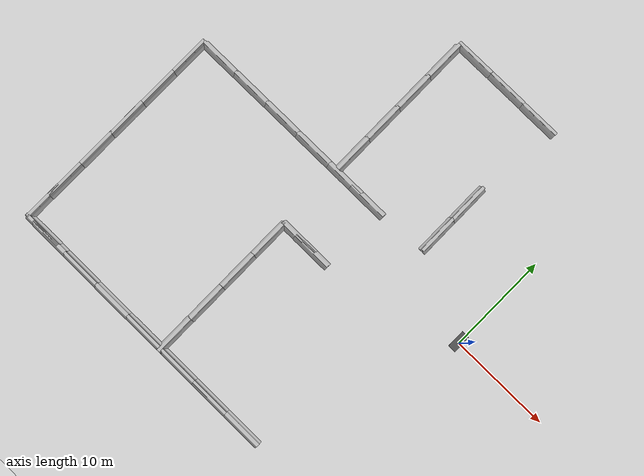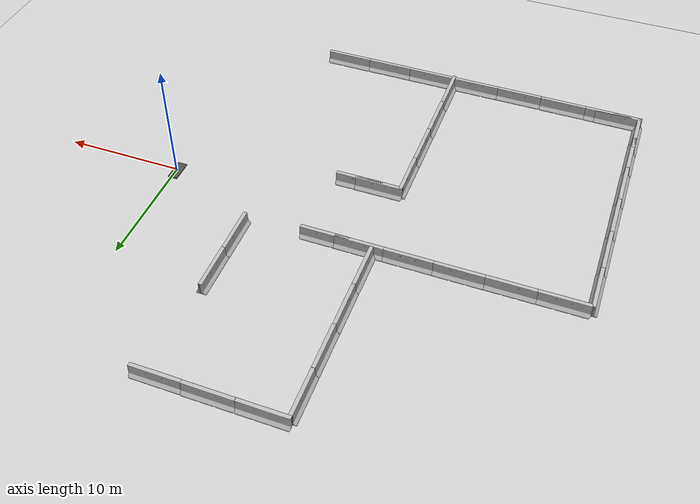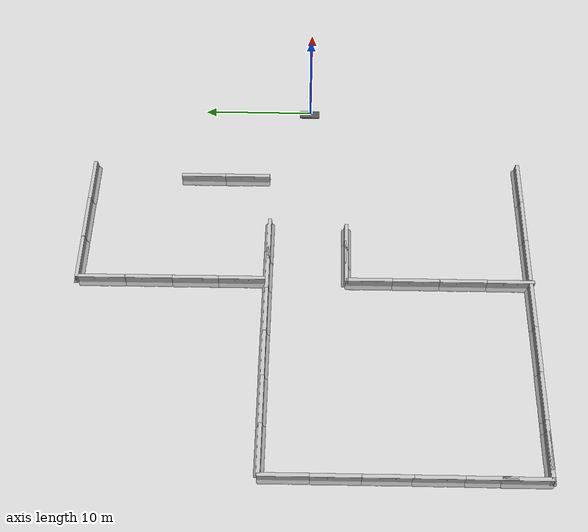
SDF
<sdf version="1.7">
 <world name="default">
  <model name="ground_plane">
   <static>1</static>
   <link name="link">
    <collision name="collision">
     <geometry><plane><normal>0 0 1</normal><size>100 100</size></plane></geometry>
     <surface><friction><ode><mu>100</mu><mu2>50</mu2></ode></friction></surface>
    </collision>
    <visual name="visual">
     <cast_shadows>0</cast_shadows>
     <geometry><plane><normal>0 0 1</normal><size>100 100</size></plane></geometry>
     <material>
      <script><uri>file://media/materials/scripts/gazebo.material</uri><name>Gazebo/Grey</name></script>
     </material>
    </visual>
   </link>
  </model>
  <model name="asphalt_plane">
   <static>1</static>
   <link name="link">
    <collision name="collision"><geometry><box><size>0.799213 1.82438 0.1</size></box></geometry></collision>
    <visual name="visual">
     <cast_shadows>0</cast_shadows>
     <geometry><box><size>0.799213 1.82438 0.1</size></box></geometry>
     <material>
      <script>
       <uri>model://asphalt_plane/materials/scripts</uri>
       <uri>model://asphalt_plane/materials/textures</uri>
       <name>vrc/asphalt</name>
      </script>
     </material>
    </visual>
   </link>
   <pose>-0.129245 0.109771 0 0 -0 0</pose>
  </model>
  <model name="jersey_barrier_clone_clone_0">
   <static>1</static>
   <link name="link">
    <visual name="visual">
     <geometry><mesh><uri>model://jersey_barrier/meshes/jersey_barrier.dae</uri></mesh></geometry>
    </visual>
    <collision name="upright">
     <pose>0 0 0.5715 0 -0 0</pose>
     <geometry><box><size>4.06542 0.3063 1.143</size></box></geometry>
    </collision>
    <collision name="base">
     <pose>0 0 0.032258 0 -0 0</pose>
     <geometry><box><size>4.06542 0.8107 0.064516</size></box></geometry>
    </collision>
    <collision name="base2">
     <pose>0 0 0.1 0 -0 0</pose>
     <geometry><box><size>4.06542 0.65 0.1</size></box></geometry>
    </collision>
    <collision name="base3">
     <pose>0 0 0.2 0 -0 0</pose>
     <geometry><box><size>4.06542 0.5 0.1</size></box></geometry>
    </collision>
    <collision name="left-angle">
     <pose>0 -0.224 0.2401 0.9 -0 0</pose>
     <geometry><box><size>4.06542 0.5 0.064516</size></box></geometry>
    </collision>
    <collision name="right-angle">
     <pose>0 0.224 0.2401 -0.9 0 0</pose>
     <geometry><box><size>4.06542 0.5 0.064516</size></box></geometry>
    </collision>
   </link>
   <pose>-8.50988 -19.0291 0 0 -0 0</pose>
  </model>
  <model name="jersey_barrier_clone_clone_1">
   <static>1</static>
   <link name="link">
    <visual name="visual">
     <geometry><mesh><uri>model://jersey_barrier/meshes/jersey_barrier.dae</uri></mesh></geometry>
    </visual>
    <collision name="upright">
     <pose>0 0 0.5715 0 -0 0</pose>
     <geometry><box><size>4.06542 0.3063 1.143</size></box></geometry>
    </collision>
    <collision name="base">
     <pose>0 0 0.032258 0 -0 0</pose>
     <geometry><box><size>4.06542 0.8107 0.064516</size></box></geometry>
    </collision>
    <collision name="base2">
     <pose>0 0 0.1 0 -0 0</pose>
     <geometry><box><size>4.06542 0.65 0.1</size></box></geometry>
    </collision>
    <collision name="base3">
     <pose>0 0 0.2 0 -0 0</pose>
     <geometry><box><size>4.06542 0.5 0.1</size></box></geometry>
    </collision>
    <collision name="left-angle">
     <pose>0 -0.224 0.2401 0.9 -0 0</pose>
     <geometry><box><size>4.06542 0.5 0.064516</size></box></geometry>
    </collision>
    <collision name="right-angle">
     <pose>0 0.224 0.2401 -0.9 0 0</pose>
     <geometry><box><size>4.06542 0.5 0.064516</size></box></geometry>
    </collision>
   </link>
   <pose>-12.5194 -19.0335 0 0 -0 0</pose>
  </model>
  <model name="jersey_barrier_clone_clone_2">
   <static>1</static>
   <link name="link">
    <visual name="visual">
     <geometry><mesh><uri>model://jersey_barrier/meshes/jersey_barrier.dae</uri></mesh></geometry>
    </visual>
    <collision name="upright">
     <pose>0 0 0.5715 0 -0 0</pose>
     <geometry><box><size>4.06542 0.3063 1.143</size></box></geometry>
    </collision>
    <collision name="base">
     <pose>0 0 0.032258 0 -0 0</pose>
     <geometry><box><size>4.06542 0.8107 0.064516</size></box></geometry>
    </collision>
    <collision name="base2">
     <pose>0 0 0.1 0 -0 0</pose>
     <geometry><box><size>4.06542 0.65 0.1</size></box></geometry>
    </collision>
    <collision name="base3">
     <pose>0 0 0.2 0 -0 0</pose>
     <geometry><box><size>4.06542 0.5 0.1</size></box></geometry>
    </collision>
    <collision name="left-angle">
     <pose>0 -0.224 0.2401 0.9 -0 0</pose>
     <geometry><box><size>4.06542 0.5 0.064516</size></box></geometry>
    </collision>
    <collision name="right-angle">
     <pose>0 0.224 0.2401 -0.9 0 0</pose>
     <geometry><box><size>4.06542 0.5 0.064516</size></box></geometry>
    </collision>
   </link>
   <pose>-16.5198 -19.0306 0 0 -0 0</pose>
  </model>
  <model name="jersey_barrier_clone_0_clone_0_clone_0_clone_0_clone_2_clone_clone_clone_clone_clone_2_clone">
   <static>1</static>
   <link name="link">
    <visual name="visual">
     <geometry><mesh><uri>model://jersey_barrier/meshes/jersey_barrier.dae</uri></mesh></geometry>
    </visual>
    <collision name="upright">
     <pose>0 0 0.5715 0 -0 0</pose>
     <geometry><box><size>4.06542 0.3063 1.143</size></box></geometry>
    </collision>
    <collision name="base">
     <pose>0 0 0.032258 0 -0 0</pose>
     <geometry><box><size>4.06542 0.8107 0.064516</size></box></geometry>
    </collision>
    <collision name="base2">
     <pose>0 0 0.1 0 -0 0</pose>
     <geometry><box><size>4.06542 0.65 0.1</size></box></geometry>
    </collision>
    <collision name="base3">
     <pose>0 0 0.2 0 -0 0</pose>
     <geometry><box><size>4.06542 0.5 0.1</size></box></geometry>
    </collision>
    <collision name="left-angle">
     <pose>0 -0.224 0.2401 0.9 -0 0</pose>
     <geometry><box><size>4.06542 0.5 0.064516</size></box></geometry>
    </collision>
    <collision name="right-angle">
     <pose>0 0.224 0.2401 -0.9 0 0</pose>
     <geometry><box><size>4.06542 0.5 0.064516</size></box></geometry>
    </collision>
   </link>
   <pose>-18.6995 -17.3271 0 0 0 -1.56339</pose>
  </model>
  <model name="jersey_barrier_clone_0_clone_0_clone_0_clone_0_clone_2_clone_clone_clone_clone_clone_2_clone_0">
   <static>1</static>
   <link name="link">
    <visual name="visual">
     <geometry><mesh><uri>model://jersey_barrier/meshes/jersey_barrier.dae</uri></mesh></geometry>
    </visual>
    <collision name="upright">
     <pose>0 0 0.5715 0 -0 0</pose>
     <geometry><box><size>4.06542 0.3063 1.143</size></box></geometry>
    </collision>
    <collision name="base">
     <pose>0 0 0.032258 0 -0 0</pose>
     <geometry><box><size>4.06542 0.8107 0.064516</size></box></geometry>
    </collision>
    <collision name="base2">
     <pose>0 0 0.1 0 -0 0</pose>
     <geometry><box><size>4.06542 0.65 0.1</size></box></geometry>
    </collision>
    <collision name="base3">
     <pose>0 0 0.2 0 -0 0</pose>
     <geometry><box><size>4.06542 0.5 0.1</size></box></geometry>
    </collision>
    <collision name="left-angle">
     <pose>0 -0.224 0.2401 0.9 -0 0</pose>
     <geometry><box><size>4.06542 0.5 0.064516</size></box></geometry>
    </collision>
    <collision name="right-angle">
     <pose>0 0.224 0.2401 -0.9 0 0</pose>
     <geometry><box><size>4.06542 0.5 0.064516</size></box></geometry>
    </collision>
   </link>
   <pose>-18.7081 -13.3038 0 0 0 -1.56339</pose>
  </model>
  <model name="jersey_barrier_clone_0_clone_0_clone_0_clone_0_clone_2_clone_clone_clone_clone_clone_2_clone_1">
   <static>1</static>
   <link name="link">
    <visual name="visual">
     <geometry><mesh><uri>model://jersey_barrier/meshes/jersey_barrier.dae</uri></mesh></geometry>
    </visual>
    <collision name="upright">
     <pose>0 0 0.5715 0 -0 0</pose>
     <geometry><box><size>4.06542 0.3063 1.143</size></box></geometry>
    </collision>
    <collision name="base">
     <pose>0 0 0.032258 0 -0 0</pose>
     <geometry><box><size>4.06542 0.8107 0.064516</size></box></geometry>
    </collision>
    <collision name="base2">
     <pose>0 0 0.1 0 -0 0</pose>
     <geometry><box><size>4.06542 0.65 0.1</size></box></geometry>
    </collision>
    <collision name="base3">
     <pose>0 0 0.2 0 -0 0</pose>
     <geometry><box><size>4.06542 0.5 0.1</size></box></geometry>
    </collision>
    <collision name="left-angle">
     <pose>0 -0.224 0.2401 0.9 -0 0</pose>
     <geometry><box><size>4.06542 0.5 0.064516</size></box></geometry>
    </collision>
    <collision name="right-angle">
     <pose>0 0.224 0.2401 -0.9 0 0</pose>
     <geometry><box><size>4.06542 0.5 0.064516</size></box></geometry>
    </collision>
   </link>
   <pose>-18.7238 -9.28369 0 0 0 -1.56339</pose>
  </model>
  <model name="jersey_barrier_clone_0_clone_0_clone_0_clone_0_clone_2_clone_clone_clone_clone_clone_2_clone_2">
   <static>1</static>
   <link name="link">
    <visual name="visual">
     <geometry><mesh><uri>model://jersey_barrier/meshes/jersey_barrier.dae</uri></mesh></geometry>
    </visual>
    <collision name="upright">
     <pose>0 0 0.5715 0 -0 0</pose>
     <geometry><box><size>4.06542 0.3063 1.143</size></box></geometry>
    </collision>
    <collision name="base">
     <pose>0 0 0.032258 0 -0 0</pose>
     <geometry><box><size>4.06542 0.8107 0.064516</size></box></geometry>
    </collision>
    <collision name="base2">
     <pose>0 0 0.1 0 -0 0</pose>
     <geometry><box><size>4.06542 0.65 0.1</size></box></geometry>
    </collision>
    <collision name="base3">
     <pose>0 0 0.2 0 -0 0</pose>
     <geometry><box><size>4.06542 0.5 0.1</size></box></geometry>
    </collision>
    <collision name="left-angle">
     <pose>0 -0.224 0.2401 0.9 -0 0</pose>
     <geometry><box><size>4.06542 0.5 0.064516</size></box></geometry>
    </collision>
    <collision name="right-angle">
     <pose>0 0.224 0.2401 -0.9 0 0</pose>
     <geometry><box><size>4.06542 0.5 0.064516</size></box></geometry>
    </collision>
   </link>
   <pose>-18.7389 -5.27713 0 0 0 -1.56339</pose>
  </model>
  <model name="jersey_barrier_clone_2">
   <static>1</static>
   <link name="link">
    <visual name="visual">
     <geometry><mesh><uri>model://jersey_barrier/meshes/jersey_barrier.dae</uri></mesh></geometry>
    </visual>
    <collision name="upright">
     <pose>0 0 0.5715 0 -0 0</pose>
     <geometry><box><size>4.06542 0.3063 1.143</size></box></geometry>
    </collision>
    <collision name="base">
     <pose>0 0 0.032258 0 -0 0</pose>
     <geometry><box><size>4.06542 0.8107 0.064516</size></box></geometry>
    </collision>
    <collision name="base2">
     <pose>0 0 0.1 0 -0 0</pose>
     <geometry><box><size>4.06542 0.65 0.1</size></box></geometry>
    </collision>
    <collision name="base3">
     <pose>0 0 0.2 0 -0 0</pose>
     <geometry><box><size>4.06542 0.5 0.1</size></box></geometry>
    </collision>
    <collision name="left-angle">
     <pose>0 -0.224 0.2401 0.9 -0 0</pose>
     <geometry><box><size>4.06542 0.5 0.064516</size></box></geometry>
    </collision>
    <collision name="right-angle">
     <pose>0 0.224 0.2401 -0.9 0 0</pose>
     <geometry><box><size>4.06542 0.5 0.064516</size></box></geometry>
    </collision>
   </link>
   <pose>-16.9002 -3.34919 0 0 -0 0</pose>
  </model>
  <model name="jersey_barrier_clone_2_clone">
   <static>1</static>
   <link name="link">
    <visual name="visual">
     <geometry><mesh><uri>model://jersey_barrier/meshes/jersey_barrier.dae</uri></mesh></geometry>
    </visual>
    <collision name="upright">
     <pose>0 0 0.5715 0 -0 0</pose>
     <geometry><box><size>4.06542 0.3063 1.143</size></box></geometry>
    </collision>
    <collision name="base">
     <pose>0 0 0.032258 0 -0 0</pose>
     <geometry><box><size>4.06542 0.8107 0.064516</size></box></geometry>
    </collision>
    <collision name="base2">
     <pose>0 0 0.1 0 -0 0</pose>
     <geometry><box><size>4.06542 0.65 0.1</size></box></geometry>
    </collision>
    <collision name="base3">
     <pose>0 0 0.2 0 -0 0</pose>
     <geometry><box><size>4.06542 0.5 0.1</size></box></geometry>
    </collision>
    <collision name="left-angle">
     <pose>0 -0.224 0.2401 0.9 -0 0</pose>
     <geometry><box><size>4.06542 0.5 0.064516</size></box></geometry>
    </collision>
    <collision name="right-angle">
     <pose>0 0.224 0.2401 -0.9 0 0</pose>
     <geometry><box><size>4.06542 0.5 0.064516</size></box></geometry>
    </collision>
   </link>
   <pose>-15.2296 -3.35993 0 0 -0 0</pose>
  </model>
  <model name="jersey_barrier_clone_0_clone_4_clone_7_clone_3_clone_clone_4_clone">
   <static>1</static>
   <link name="link">
    <visual name="visual">
     <geometry><mesh><uri>model://jersey_barrier/meshes/jersey_barrier.dae</uri></mesh></geometry>
    </visual>
    <collision name="upright">
     <pose>0 0 0.5715 0 -0 0</pose>
     <geometry><box><size>4.06542 0.3063 1.143</size></box></geometry>
    </collision>
    <collision name="base">
     <pose>0 0 0.032258 0 -0 0</pose>
     <geometry><box><size>4.06542 0.8107 0.064516</size></box></geometry>
    </collision>
    <collision name="base2">
     <pose>0 0 0.1 0 -0 0</pose>
     <geometry><box><size>4.06542 0.65 0.1</size></box></geometry>
    </collision>
    <collision name="base3">
     <pose>0 0 0.2 0 -0 0</pose>
     <geometry><box><size>4.06542 0.5 0.1</size></box></geometry>
    </collision>
    <collision name="left-angle">
     <pose>0 -0.224 0.2401 0.9 -0 0</pose>
     <geometry><box><size>4.06542 0.5 0.064516</size></box></geometry>
    </collision>
    <collision name="right-angle">
     <pose>0 0.224 0.2401 -0.9 0 0</pose>
     <geometry><box><size>4.06542 0.5 0.064516</size></box></geometry>
    </collision>
   </link>
   <pose>-14.8124 3.40324 0 0 -0 0</pose>
  </model>
  <model name="jersey_barrier_clone_0_clone_4_clone_7_clone_3_clone_clone_4_clone_0">
   <static>1</static>
   <link name="link">
    <visual name="visual">
     <geometry><mesh><uri>model://jersey_barrier/meshes/jersey_barrier.dae</uri></mesh></geometry>
    </visual>
    <collision name="upright">
     <pose>0 0 0.5715 0 -0 0</pose>
     <geometry><box><size>4.06542 0.3063 1.143</size></box></geometry>
    </collision>
    <collision name="base">
     <pose>0 0 0.032258 0 -0 0</pose>
     <geometry><box><size>4.06542 0.8107 0.064516</size></box></geometry>
    </collision>
    <collision name="base2">
     <pose>0 0 0.1 0 -0 0</pose>
     <geometry><box><size>4.06542 0.65 0.1</size></box></geometry>
    </collision>
    <collision name="base3">
     <pose>0 0 0.2 0 -0 0</pose>
     <geometry><box><size>4.06542 0.5 0.1</size></box></geometry>
    </collision>
    <collision name="left-angle">
     <pose>0 -0.224 0.2401 0.9 -0 0</pose>
     <geometry><box><size>4.06542 0.5 0.064516</size></box></geometry>
    </collision>
    <collision name="right-angle">
     <pose>0 0.224 0.2401 -0.9 0 0</pose>
     <geometry><box><size>4.06542 0.5 0.064516</size></box></geometry>
    </collision>
   </link>
   <pose>-17.6567 3.4152 0 0 -0 0</pose>
  </model>
  <model name="jersey_barrier_clone_0_clone_4_clone_7_clone_3_clone_clone_4_clone_1">
   <static>1</static>
   <link name="link">
    <visual name="visual">
     <geometry><mesh><uri>model://jersey_barrier/meshes/jersey_barrier.dae</uri></mesh></geometry>
    </visual>
    <collision name="upright">
     <pose>0 0 0.5715 0 -0 0</pose>
     <geometry><box><size>4.06542 0.3063 1.143</size></box></geometry>
    </collision>
    <collision name="base">
     <pose>0 0 0.032258 0 -0 0</pose>
     <geometry><box><size>4.06542 0.8107 0.064516</size></box></geometry>
    </collision>
    <collision name="base2">
     <pose>0 0 0.1 0 -0 0</pose>
     <geometry><box><size>4.06542 0.65 0.1</size></box></geometry>
    </collision>
    <collision name="base3">
     <pose>0 0 0.2 0 -0 0</pose>
     <geometry><box><size>4.06542 0.5 0.1</size></box></geometry>
    </collision>
    <collision name="left-angle">
     <pose>0 -0.224 0.2401 0.9 -0 0</pose>
     <geometry><box><size>4.06542 0.5 0.064516</size></box></geometry>
    </collision>
    <collision name="right-angle">
     <pose>0 0.224 0.2401 -0.9 0 0</pose>
     <geometry><box><size>4.06542 0.5 0.064516</size></box></geometry>
    </collision>
   </link>
   <pose>-21.6479 3.41499 0 0 -0 0</pose>
  </model>
  <model name="jersey_barrier_clone_0_clone_4_clone_7_clone_3_clone_clone_4_clone_2">
   <static>1</static>
   <link name="link">
    <visual name="visual">
     <geometry><mesh><uri>model://jersey_barrier/meshes/jersey_barrier.dae</uri></mesh></geometry>
    </visual>
    <collision name="upright">
     <pose>0 0 0.5715 0 -0 0</pose>
     <geometry><box><size>4.06542 0.3063 1.143</size></box></geometry>
    </collision>
    <collision name="base">
     <pose>0 0 0.032258 0 -0 0</pose>
     <geometry><box><size>4.06542 0.8107 0.064516</size></box></geometry>
    </collision>
    <collision name="base2">
     <pose>0 0 0.1 0 -0 0</pose>
     <geometry><box><size>4.06542 0.65 0.1</size></box></geometry>
    </collision>
    <collision name="base3">
     <pose>0 0 0.2 0 -0 0</pose>
     <geometry><box><size>4.06542 0.5 0.1</size></box></geometry>
    </collision>
    <collision name="left-angle">
     <pose>0 -0.224 0.2401 0.9 -0 0</pose>
     <geometry><box><size>4.06542 0.5 0.064516</size></box></geometry>
    </collision>
    <collision name="right-angle">
     <pose>0 0.224 0.2401 -0.9 0 0</pose>
     <geometry><box><size>4.06542 0.5 0.064516</size></box></geometry>
    </collision>
   </link>
   <pose>-25.6493 3.42223 0 0 -0 0</pose>
  </model>
  <model name="jersey_barrier_clone_0_clone_4_clone_7_clone_3_clone_clone_4_clone_3">
   <static>1</static>
   <link name="link">
    <visual name="visual">
     <geometry><mesh><uri>model://jersey_barrier/meshes/jersey_barrier.dae</uri></mesh></geometry>
    </visual>
    <collision name="upright">
     <pose>0 0 0.5715 0 -0 0</pose>
     <geometry><box><size>4.06542 0.3063 1.143</size></box></geometry>
    </collision>
    <collision name="base">
     <pose>0 0 0.032258 0 -0 0</pose>
     <geometry><box><size>4.06542 0.8107 0.064516</size></box></geometry>
    </collision>
    <collision name="base2">
     <pose>0 0 0.1 0 -0 0</pose>
     <geometry><box><size>4.06542 0.65 0.1</size></box></geometry>
    </collision>
    <collision name="base3">
     <pose>0 0 0.2 0 -0 0</pose>
     <geometry><box><size>4.06542 0.5 0.1</size></box></geometry>
    </collision>
    <collision name="left-angle">
     <pose>0 -0.224 0.2401 0.9 -0 0</pose>
     <geometry><box><size>4.06542 0.5 0.064516</size></box></geometry>
    </collision>
    <collision name="right-angle">
     <pose>0 0.224 0.2401 -0.9 0 0</pose>
     <geometry><box><size>4.06542 0.5 0.064516</size></box></geometry>
    </collision>
   </link>
   <pose>-29.6256 3.41003 0 0 -0 0</pose>
  </model>
  <model name="jersey_barrier_clone_0_clone_4_clone_7_clone_3_clone_clone_4_clone_4">
   <static>1</static>
   <link name="link">
    <visual name="visual">
     <geometry><mesh><uri>model://jersey_barrier/meshes/jersey_barrier.dae</uri></mesh></geometry>
    </visual>
    <collision name="upright">
     <pose>0 0 0.5715 0 -0 0</pose>
     <geometry><box><size>4.06542 0.3063 1.143</size></box></geometry>
    </collision>
    <collision name="base">
     <pose>0 0 0.032258 0 -0 0</pose>
     <geometry><box><size>4.06542 0.8107 0.064516</size></box></geometry>
    </collision>
    <collision name="base2">
     <pose>0 0 0.1 0 -0 0</pose>
     <geometry><box><size>4.06542 0.65 0.1</size></box></geometry>
    </collision>
    <collision name="base3">
     <pose>0 0 0.2 0 -0 0</pose>
     <geometry><box><size>4.06542 0.5 0.1</size></box></geometry>
    </collision>
    <collision name="left-angle">
     <pose>0 -0.224 0.2401 0.9 -0 0</pose>
     <geometry><box><size>4.06542 0.5 0.064516</size></box></geometry>
    </collision>
    <collision name="right-angle">
     <pose>0 0.224 0.2401 -0.9 0 0</pose>
     <geometry><box><size>4.06542 0.5 0.064516</size></box></geometry>
    </collision>
   </link>
   <pose>-33.6015 3.40125 0 0 -0 0</pose>
  </model>
  <model name="jersey_barrier_clone_0_clone_0_clone_0_clone_0_clone_2_clone_clone_clone_clone_clone_2_clone_2_clone">
   <static>1</static>
   <link name="link">
    <visual name="visual">
     <geometry><mesh><uri>model://jersey_barrier/meshes/jersey_barrier.dae</uri></mesh></geometry>
    </visual>
    <collision name="upright">
     <pose>0 0 0.5715 0 -0 0</pose>
     <geometry><box><size>4.06542 0.3063 1.143</size></box></geometry>
    </collision>
    <collision name="base">
     <pose>0 0 0.032258 0 -0 0</pose>
     <geometry><box><size>4.06542 0.8107 0.064516</size></box></geometry>
    </collision>
    <collision name="base2">
     <pose>0 0 0.1 0 -0 0</pose>
     <geometry><box><size>4.06542 0.65 0.1</size></box></geometry>
    </collision>
    <collision name="base3">
     <pose>0 0 0.2 0 -0 0</pose>
     <geometry><box><size>4.06542 0.5 0.1</size></box></geometry>
    </collision>
    <collision name="left-angle">
     <pose>0 -0.224 0.2401 0.9 -0 0</pose>
     <geometry><box><size>4.06542 0.5 0.064516</size></box></geometry>
    </collision>
    <collision name="right-angle">
     <pose>0 0.224 0.2401 -0.9 0 0</pose>
     <geometry><box><size>4.06542 0.5 0.064516</size></box></geometry>
    </collision>
   </link>
   <pose>-35.6819 1.49445 0 0 0 -1.56339</pose>
  </model>
  <model name="jersey_barrier_clone_0_clone_0_clone_0_clone_0_clone_2_clone_clone_clone_clone_clone_2_clone_2_clone_0">
   <static>1</static>
   <link name="link">
    <visual name="visual">
     <geometry><mesh><uri>model://jersey_barrier/meshes/jersey_barrier.dae</uri></mesh></geometry>
    </visual>
    <collision name="upright">
     <pose>0 0 0.5715 0 -0 0</pose>
     <geometry><box><size>4.06542 0.3063 1.143</size></box></geometry>
    </collision>
    <collision name="base">
     <pose>0 0 0.032258 0 -0 0</pose>
     <geometry><box><size>4.06542 0.8107 0.064516</size></box></geometry>
    </collision>
    <collision name="base2">
     <pose>0 0 0.1 0 -0 0</pose>
     <geometry><box><size>4.06542 0.65 0.1</size></box></geometry>
    </collision>
    <collision name="base3">
     <pose>0 0 0.2 0 -0 0</pose>
     <geometry><box><size>4.06542 0.5 0.1</size></box></geometry>
    </collision>
    <collision name="left-angle">
     <pose>0 -0.224 0.2401 0.9 -0 0</pose>
     <geometry><box><size>4.06542 0.5 0.064516</size></box></geometry>
    </collision>
    <collision name="right-angle">
     <pose>0 0.224 0.2401 -0.9 0 0</pose>
     <geometry><box><size>4.06542 0.5 0.064516</size></box></geometry>
    </collision>
   </link>
   <pose>-35.6664 -2.5053 0 0 0 -1.56339</pose>
  </model>
  <model name="jersey_barrier_clone_0_clone_0_clone_0_clone_0_clone_2_clone_clone_clone_clone_clone_2_clone_2_clone_1">
   <static>1</static>
   <link name="link">
    <visual name="visual">
     <geometry><mesh><uri>model://jersey_barrier/meshes/jersey_barrier.dae</uri></mesh></geometry>
    </visual>
    <collision name="upright">
     <pose>0 0 0.5715 0 -0 0</pose>
     <geometry><box><size>4.06542 0.3063 1.143</size></box></geometry>
    </collision>
    <collision name="base">
     <pose>0 0 0.032258 0 -0 0</pose>
     <geometry><box><size>4.06542 0.8107 0.064516</size></box></geometry>
    </collision>
    <collision name="base2">
     <pose>0 0 0.1 0 -0 0</pose>
     <geometry><box><size>4.06542 0.65 0.1</size></box></geometry>
    </collision>
    <collision name="base3">
     <pose>0 0 0.2 0 -0 0</pose>
     <geometry><box><size>4.06542 0.5 0.1</size></box></geometry>
    </collision>
    <collision name="left-angle">
     <pose>0 -0.224 0.2401 0.9 -0 0</pose>
     <geometry><box><size>4.06542 0.5 0.064516</size></box></geometry>
    </collision>
    <collision name="right-angle">
     <pose>0 0.224 0.2401 -0.9 0 0</pose>
     <geometry><box><size>4.06542 0.5 0.064516</size></box></geometry>
    </collision>
   </link>
   <pose>-35.6456 -6.48877 0 0 0 -1.56339</pose>
  </model>
  <model name="jersey_barrier_clone_0_clone_0_clone_0_clone_0_clone_2_clone_clone_clone_clone_clone_2_clone_2_clone_2">
   <static>1</static>
   <link name="link">
    <visual name="visual">
     <geometry><mesh><uri>model://jersey_barrier/meshes/jersey_barrier.dae</uri></mesh></geometry>
    </visual>
    <collision name="upright">
     <pose>0 0 0.5715 0 -0 0</pose>
     <geometry><box><size>4.06542 0.3063 1.143</size></box></geometry>
    </collision>
    <collision name="base">
     <pose>0 0 0.032258 0 -0 0</pose>
     <geometry><box><size>4.06542 0.8107 0.064516</size></box></geometry>
    </collision>
    <collision name="base2">
     <pose>0 0 0.1 0 -0 0</pose>
     <geometry><box><size>4.06542 0.65 0.1</size></box></geometry>
    </collision>
    <collision name="base3">
     <pose>0 0 0.2 0 -0 0</pose>
     <geometry><box><size>4.06542 0.5 0.1</size></box></geometry>
    </collision>
    <collision name="left-angle">
     <pose>0 -0.224 0.2401 0.9 -0 0</pose>
     <geometry><box><size>4.06542 0.5 0.064516</size></box></geometry>
    </collision>
    <collision name="right-angle">
     <pose>0 0.224 0.2401 -0.9 0 0</pose>
     <geometry><box><size>4.06542 0.5 0.064516</size></box></geometry>
    </collision>
   </link>
   <pose>-35.6326 -10.3438 0 0 0 -1.56339</pose>
  </model>
  <model name="jersey_barrier_clone_0_clone_0_clone_0_clone_0_clone_2_clone_clone_clone_clone_clone_2_clone_2_clone_3">
   <static>1</static>
   <link name="link">
    <visual name="visual">
     <geometry><mesh><uri>model://jersey_barrier/meshes/jersey_barrier.dae</uri></mesh></geometry>
    </visual>
    <collision name="upright">
     <pose>0 0 0.5715 0 -0 0</pose>
     <geometry><box><size>4.06542 0.3063 1.143</size></box></geometry>
    </collision>
    <collision name="base">
     <pose>0 0 0.032258 0 -0 0</pose>
     <geometry><box><size>4.06542 0.8107 0.064516</size></box></geometry>
    </collision>
    <collision name="base2">
     <pose>0 0 0.1 0 -0 0</pose>
     <geometry><box><size>4.06542 0.65 0.1</size></box></geometry>
    </collision>
    <collision name="base3">
     <pose>0 0 0.2 0 -0 0</pose>
     <geometry><box><size>4.06542 0.5 0.1</size></box></geometry>
    </collision>
    <collision name="left-angle">
     <pose>0 -0.224 0.2401 0.9 -0 0</pose>
     <geometry><box><size>4.06542 0.5 0.064516</size></box></geometry>
    </collision>
    <collision name="right-angle">
     <pose>0 0.224 0.2401 -0.9 0 0</pose>
     <geometry><box><size>4.06542 0.5 0.064516</size></box></geometry>
    </collision>
   </link>
   <pose>-35.6233 -14.362 0 0 0 -1.56339</pose>
  </model>
  <model name="jersey_barrier_clone_clone_2_clone">
   <static>1</static>
   <link name="link">
    <visual name="visual">
     <geometry><mesh><uri>model://jersey_barrier/meshes/jersey_barrier.dae</uri></mesh></geometry>
    </visual>
    <collision name="upright">
     <pose>0 0 0.5715 0 -0 0</pose>
     <geometry><box><size>4.06542 0.3063 1.143</size></box></geometry>
    </collision>
    <collision name="base">
     <pose>0 0 0.032258 0 -0 0</pose>
     <geometry><box><size>4.06542 0.8107 0.064516</size></box></geometry>
    </collision>
    <collision name="base2">
     <pose>0 0 0.1 0 -0 0</pose>
     <geometry><box><size>4.06542 0.65 0.1</size></box></geometry>
    </collision>
    <collision name="base3">
     <pose>0 0 0.2 0 -0 0</pose>
     <geometry><box><size>4.06542 0.5 0.1</size></box></geometry>
    </collision>
    <collision name="left-angle">
     <pose>0 -0.224 0.2401 0.9 -0 0</pose>
     <geometry><box><size>4.06542 0.5 0.064516</size></box></geometry>
    </collision>
    <collision name="right-angle">
     <pose>0 0.224 0.2401 -0.9 0 0</pose>
     <geometry><box><size>4.06542 0.5 0.064516</size></box></geometry>
    </collision>
   </link>
   <pose>-20.8644 -19.0385 0 0 -0 0</pose>
  </model>
  <model name="jersey_barrier_clone_clone_2_clone_0">
   <static>1</static>
   <link name="link">
    <visual name="visual">
     <geometry><mesh><uri>model://jersey_barrier/meshes/jersey_barrier.dae</uri></mesh></geometry>
    </visual>
    <collision name="upright">
     <pose>0 0 0.5715 0 -0 0</pose>
     <geometry><box><size>4.06542 0.3063 1.143</size></box></geometry>
    </collision>
    <collision name="base">
     <pose>0 0 0.032258 0 -0 0</pose>
     <geometry><box><size>4.06542 0.8107 0.064516</size></box></geometry>
    </collision>
    <collision name="base2">
     <pose>0 0 0.1 0 -0 0</pose>
     <geometry><box><size>4.06542 0.65 0.1</size></box></geometry>
    </collision>
    <collision name="base3">
     <pose>0 0 0.2 0 -0 0</pose>
     <geometry><box><size>4.06542 0.5 0.1</size></box></geometry>
    </collision>
    <collision name="left-angle">
     <pose>0 -0.224 0.2401 0.9 -0 0</pose>
     <geometry><box><size>4.06542 0.5 0.064516</size></box></geometry>
    </collision>
    <collision name="right-angle">
     <pose>0 0.224 0.2401 -0.9 0 0</pose>
     <geometry><box><size>4.06542 0.5 0.064516</size></box></geometry>
    </collision>
   </link>
   <pose>-24.8522 -19.0437 0 0 -0 0</pose>
  </model>
  <model name="jersey_barrier_clone_clone_2_clone_1">
   <static>1</static>
   <link name="link">
    <visual name="visual">
     <geometry><mesh><uri>model://jersey_barrier/meshes/jersey_barrier.dae</uri></mesh></geometry>
    </visual>
    <collision name="upright">
     <pose>0 0 0.5715 0 -0 0</pose>
     <geometry><box><size>4.06542 0.3063 1.143</size></box></geometry>
    </collision>
    <collision name="base">
     <pose>0 0 0.032258 0 -0 0</pose>
     <geometry><box><size>4.06542 0.8107 0.064516</size></box></geometry>
    </collision>
    <collision name="base2">
     <pose>0 0 0.1 0 -0 0</pose>
     <geometry><box><size>4.06542 0.65 0.1</size></box></geometry>
    </collision>
    <collision name="base3">
     <pose>0 0 0.2 0 -0 0</pose>
     <geometry><box><size>4.06542 0.5 0.1</size></box></geometry>
    </collision>
    <collision name="left-angle">
     <pose>0 -0.224 0.2401 0.9 -0 0</pose>
     <geometry><box><size>4.06542 0.5 0.064516</size></box></geometry>
    </collision>
    <collision name="right-angle">
     <pose>0 0.224 0.2401 -0.9 0 0</pose>
     <geometry><box><size>4.06542 0.5 0.064516</size></box></geometry>
    </collision>
   </link>
   <pose>-28.8903 -19.0251 0 0 -0 0</pose>
  </model>
  <model name="jersey_barrier_clone_clone_2_clone_2">
   <static>1</static>
   <link name="link">
    <visual name="visual">
     <geometry><mesh><uri>model://jersey_barrier/meshes/jersey_barrier.dae</uri></mesh></geometry>
    </visual>
    <collision name="upright">
     <pose>0 0 0.5715 0 -0 0</pose>
     <geometry><box><size>4.06542 0.3063 1.143</size></box></geometry>
    </collision>
    <collision name="base">
     <pose>0 0 0.032258 0 -0 0</pose>
     <geometry><box><size>4.06542 0.8107 0.064516</size></box></geometry>
    </collision>
    <collision name="base2">
     <pose>0 0 0.1 0 -0 0</pose>
     <geometry><box><size>4.06542 0.65 0.1</size></box></geometry>
    </collision>
    <collision name="base3">
     <pose>0 0 0.2 0 -0 0</pose>
     <geometry><box><size>4.06542 0.5 0.1</size></box></geometry>
    </collision>
    <collision name="left-angle">
     <pose>0 -0.224 0.2401 0.9 -0 0</pose>
     <geometry><box><size>4.06542 0.5 0.064516</size></box></geometry>
    </collision>
    <collision name="right-angle">
     <pose>0 0.224 0.2401 -0.9 0 0</pose>
     <geometry><box><size>4.06542 0.5 0.064516</size></box></geometry>
    </collision>
   </link>
   <pose>-32.8946 -19.0151 0 0 -0 0</pose>
  </model>
  <model name="jersey_barrier_clone_clone_2_clone_3">
   <static>1</static>
   <link name="link">
    <visual name="visual">
     <geometry><mesh><uri>model://jersey_barrier/meshes/jersey_barrier.dae</uri></mesh></geometry>
    </visual>
    <collision name="upright">
     <pose>0 0 0.5715 0 -0 0</pose>
     <geometry><box><size>4.06542 0.3063 1.143</size></box></geometry>
    </collision>
    <collision name="base">
     <pose>0 0 0.032258 0 -0 0</pose>
     <geometry><box><size>4.06542 0.8107 0.064516</size></box></geometry>
    </collision>
    <collision name="base2">
     <pose>0 0 0.1 0 -0 0</pose>
     <geometry><box><size>4.06542 0.65 0.1</size></box></geometry>
    </collision>
    <collision name="base3">
     <pose>0 0 0.2 0 -0 0</pose>
     <geometry><box><size>4.06542 0.5 0.1</size></box></geometry>
    </collision>
    <collision name="left-angle">
     <pose>0 -0.224 0.2401 0.9 -0 0</pose>
     <geometry><box><size>4.06542 0.5 0.064516</size></box></geometry>
    </collision>
    <collision name="right-angle">
     <pose>0 0.224 0.2401 -0.9 0 0</pose>
     <geometry><box><size>4.06542 0.5 0.064516</size></box></geometry>
    </collision>
   </link>
   <pose>-33.8057 -18.9964 0 0 -0 0</pose>
  </model>
  <model name="jersey_barrier_clone_0_clone_0_clone_0_clone_0_clone_2_clone_clone_clone_clone_clone_2_clone_2_clone_3_clone">
   <static>1</static>
   <link name="link">
    <visual name="visual">
     <geometry><mesh><uri>model://jersey_barrier/meshes/jersey_barrier.dae</uri></mesh></geometry>
    </visual>
    <collision name="upright">
     <pose>0 0 0.5715 0 -0 0</pose>
     <geometry><box><size>4.06542 0.3063 1.143</size></box></geometry>
    </collision>
    <collision name="base">
     <pose>0 0 0.032258 0 -0 0</pose>
     <geometry><box><size>4.06542 0.8107 0.064516</size></box></geometry>
    </collision>
    <collision name="base2">
     <pose>0 0 0.1 0 -0 0</pose>
     <geometry><box><size>4.06542 0.65 0.1</size></box></geometry>
    </collision>
    <collision name="base3">
     <pose>0 0 0.2 0 -0 0</pose>
     <geometry><box><size>4.06542 0.5 0.1</size></box></geometry>
    </collision>
    <collision name="left-angle">
     <pose>0 -0.224 0.2401 0.9 -0 0</pose>
     <geometry><box><size>4.06542 0.5 0.064516</size></box></geometry>
    </collision>
    <collision name="right-angle">
     <pose>0 0.224 0.2401 -0.9 0 0</pose>
     <geometry><box><size>4.06542 0.5 0.064516</size></box></geometry>
    </collision>
   </link>
   <pose>-35.6281 -17.1092 0 0 0 -1.56339</pose>
  </model>
  <model name="jersey_barrier_clone_0_clone_0_clone_0_clone_0_clone_2_clone_clone_clone_clone_clone_3">
   <static>1</static>
   <link name="link">
    <visual name="visual">
     <geometry><mesh><uri>model://jersey_barrier/meshes/jersey_barrier.dae</uri></mesh></geometry>
    </visual>
    <collision name="upright">
     <pose>0 0 0.5715 0 -0 0</pose>
     <geometry><box><size>4.06542 0.3063 1.143</size></box></geometry>
    </collision>
    <collision name="base">
     <pose>0 0 0.032258 0 -0 0</pose>
     <geometry><box><size>4.06542 0.8107 0.064516</size></box></geometry>
    </collision>
    <collision name="base2">
     <pose>0 0 0.1 0 -0 0</pose>
     <geometry><box><size>4.06542 0.65 0.1</size></box></geometry>
    </collision>
    <collision name="base3">
     <pose>0 0 0.2 0 -0 0</pose>
     <geometry><box><size>4.06542 0.5 0.1</size></box></geometry>
    </collision>
    <collision name="left-angle">
     <pose>0 -0.224 0.2401 0.9 -0 0</pose>
     <geometry><box><size>4.06542 0.5 0.064516</size></box></geometry>
    </collision>
    <collision name="right-angle">
     <pose>0 0.224 0.2401 -0.9 0 0</pose>
     <geometry><box><size>4.06542 0.5 0.064516</size></box></geometry>
    </collision>
   </link>
   <pose>-18.7491 5.56023 0 0 0 -1.56339</pose>
  </model>
  <model name="jersey_barrier_clone_0_clone_0_clone_0_clone_0_clone_2_clone_clone_clone_clone_clone_3_clone">
   <static>1</static>
   <link name="link">
    <visual name="visual">
     <geometry><mesh><uri>model://jersey_barrier/meshes/jersey_barrier.dae</uri></mesh></geometry>
    </visual>
    <collision name="upright">
     <pose>0 0 0.5715 0 -0 0</pose>
     <geometry><box><size>4.06542 0.3063 1.143</size></box></geometry>
    </collision>
    <collision name="base">
     <pose>0 0 0.032258 0 -0 0</pose>
     <geometry><box><size>4.06542 0.8107 0.064516</size></box></geometry>
    </collision>
    <collision name="base2">
     <pose>0 0 0.1 0 -0 0</pose>
     <geometry><box><size>4.06542 0.65 0.1</size></box></geometry>
    </collision>
    <collision name="base3">
     <pose>0 0 0.2 0 -0 0</pose>
     <geometry><box><size>4.06542 0.5 0.1</size></box></geometry>
    </collision>
    <collision name="left-angle">
     <pose>0 -0.224 0.2401 0.9 -0 0</pose>
     <geometry><box><size>4.06542 0.5 0.064516</size></box></geometry>
    </collision>
    <collision name="right-angle">
     <pose>0 0.224 0.2401 -0.9 0 0</pose>
     <geometry><box><size>4.06542 0.5 0.064516</size></box></geometry>
    </collision>
   </link>
   <pose>-18.7715 9.50204 0 0 0 -1.56339</pose>
  </model>
  <model name="jersey_barrier_clone_0_clone_0_clone_0_clone_0_clone_2_clone_clone_clone_clone_clone_3_clone_0">
   <static>1</static>
   <link name="link">
    <visual name="visual">
     <geometry><mesh><uri>model://jersey_barrier/meshes/jersey_barrier.dae</uri></mesh></geometry>
    </visual>
    <collision name="upright">
     <pose>0 0 0.5715 0 -0 0</pose>
     <geometry><box><size>4.06542 0.3063 1.143</size></box></geometry>
    </collision>
    <collision name="base">
     <pose>0 0 0.032258 0 -0 0</pose>
     <geometry><box><size>4.06542 0.8107 0.064516</size></box></geometry>
    </collision>
    <collision name="base2">
     <pose>0 0 0.1 0 -0 0</pose>
     <geometry><box><size>4.06542 0.65 0.1</size></box></geometry>
    </collision>
    <collision name="base3">
     <pose>0 0 0.2 0 -0 0</pose>
     <geometry><box><size>4.06542 0.5 0.1</size></box></geometry>
    </collision>
    <collision name="left-angle">
     <pose>0 -0.224 0.2401 0.9 -0 0</pose>
     <geometry><box><size>4.06542 0.5 0.064516</size></box></geometry>
    </collision>
    <collision name="right-angle">
     <pose>0 0.224 0.2401 -0.9 0 0</pose>
     <geometry><box><size>4.06542 0.5 0.064516</size></box></geometry>
    </collision>
   </link>
   <pose>-18.7851 13.512 0 0 0 -1.56339</pose>
  </model>
  <model name="jersey_barrier_clone_0_clone_0_clone_0_clone_0_clone_2_clone_clone_clone_clone_clone_3_clone_1">
   <static>1</static>
   <link name="link">
    <visual name="visual">
     <geometry><mesh><uri>model://jersey_barrier/meshes/jersey_barrier.dae</uri></mesh></geometry>
    </visual>
    <collision name="upright">
     <pose>0 0 0.5715 0 -0 0</pose>
     <geometry><box><size>4.06542 0.3063 1.143</size></box></geometry>
    </collision>
    <collision name="base">
     <pose>0 0 0.032258 0 -0 0</pose>
     <geometry><box><size>4.06542 0.8107 0.064516</size></box></geometry>
    </collision>
    <collision name="base2">
     <pose>0 0 0.1 0 -0 0</pose>
     <geometry><box><size>4.06542 0.65 0.1</size></box></geometry>
    </collision>
    <collision name="base3">
     <pose>0 0 0.2 0 -0 0</pose>
     <geometry><box><size>4.06542 0.5 0.1</size></box></geometry>
    </collision>
    <collision name="left-angle">
     <pose>0 -0.224 0.2401 0.9 -0 0</pose>
     <geometry><box><size>4.06542 0.5 0.064516</size></box></geometry>
    </collision>
    <collision name="right-angle">
     <pose>0 0.224 0.2401 -0.9 0 0</pose>
     <geometry><box><size>4.06542 0.5 0.064516</size></box></geometry>
    </collision>
   </link>
   <pose>-18.8146 17.5419 0 0 0 -1.56339</pose>
  </model>
  <model name="jersey_barrier_clone_0_clone_4_clone_7_clone_2_clone_clone_clone_clone">
   <static>1</static>
   <link name="link">
    <visual name="visual">
     <geometry><mesh><uri>model://jersey_barrier/meshes/jersey_barrier.dae</uri></mesh></geometry>
    </visual>
    <collision name="upright">
     <pose>0 0 0.5715 0 -0 0</pose>
     <geometry><box><size>4.06542 0.3063 1.143</size></box></geometry>
    </collision>
    <collision name="base">
     <pose>0 0 0.032258 0 -0 0</pose>
     <geometry><box><size>4.06542 0.8107 0.064516</size></box></geometry>
    </collision>
    <collision name="base2">
     <pose>0 0 0.1 0 -0 0</pose>
     <geometry><box><size>4.06542 0.65 0.1</size></box></geometry>
    </collision>
    <collision name="base3">
     <pose>0 0 0.2 0 -0 0</pose>
     <geometry><box><size>4.06542 0.5 0.1</size></box></geometry>
    </collision>
    <collision name="left-angle">
     <pose>0 -0.224 0.2401 0.9 -0 0</pose>
     <geometry><box><size>4.06542 0.5 0.064516</size></box></geometry>
    </collision>
    <collision name="right-angle">
     <pose>0 0.224 0.2401 -0.9 0 0</pose>
     <geometry><box><size>4.06542 0.5 0.064516</size></box></geometry>
    </collision>
   </link>
   <pose>-16.9529 19.6737 0 0 -0 0</pose>
  </model>
  <model name="jersey_barrier_clone_0_clone_4_clone_7_clone_2_clone_clone_clone_clone_0">
   <static>1</static>
   <link name="link">
    <visual name="visual">
     <geometry><mesh><uri>model://jersey_barrier/meshes/jersey_barrier.dae</uri></mesh></geometry>
    </visual>
    <collision name="upright">
     <pose>0 0 0.5715 0 -0 0</pose>
     <geometry><box><size>4.06542 0.3063 1.143</size></box></geometry>
    </collision>
    <collision name="base">
     <pose>0 0 0.032258 0 -0 0</pose>
     <geometry><box><size>4.06542 0.8107 0.064516</size></box></geometry>
    </collision>
    <collision name="base2">
     <pose>0 0 0.1 0 -0 0</pose>
     <geometry><box><size>4.06542 0.65 0.1</size></box></geometry>
    </collision>
    <collision name="base3">
     <pose>0 0 0.2 0 -0 0</pose>
     <geometry><box><size>4.06542 0.5 0.1</size></box></geometry>
    </collision>
    <collision name="left-angle">
     <pose>0 -0.224 0.2401 0.9 -0 0</pose>
     <geometry><box><size>4.06542 0.5 0.064516</size></box></geometry>
    </collision>
    <collision name="right-angle">
     <pose>0 0.224 0.2401 -0.9 0 0</pose>
     <geometry><box><size>4.06542 0.5 0.064516</size></box></geometry>
    </collision>
   </link>
   <pose>-12.9126 19.6766 0 0 -0 0</pose>
  </model>
  <model name="jersey_barrier_clone_0_clone_4_clone_7_clone_2_clone_clone_clone_clone_1">
   <static>1</static>
   <link name="link">
    <visual name="visual">
     <geometry><mesh><uri>model://jersey_barrier/meshes/jersey_barrier.dae</uri></mesh></geometry>
    </visual>
    <collision name="upright">
     <pose>0 0 0.5715 0 -0 0</pose>
     <geometry><box><size>4.06542 0.3063 1.143</size></box></geometry>
    </collision>
    <collision name="base">
     <pose>0 0 0.032258 0 -0 0</pose>
     <geometry><box><size>4.06542 0.8107 0.064516</size></box></geometry>
    </collision>
    <collision name="base2">
     <pose>0 0 0.1 0 -0 0</pose>
     <geometry><box><size>4.06542 0.65 0.1</size></box></geometry>
    </collision>
    <collision name="base3">
     <pose>0 0 0.2 0 -0 0</pose>
     <geometry><box><size>4.06542 0.5 0.1</size></box></geometry>
    </collision>
    <collision name="left-angle">
     <pose>0 -0.224 0.2401 0.9 -0 0</pose>
     <geometry><box><size>4.06542 0.5 0.064516</size></box></geometry>
    </collision>
    <collision name="right-angle">
     <pose>0 0.224 0.2401 -0.9 0 0</pose>
     <geometry><box><size>4.06542 0.5 0.064516</size></box></geometry>
    </collision>
   </link>
   <pose>-8.89863 19.6521 0 0 -0 0</pose>
  </model>
  <model name="jersey_barrier_clone_0_clone_0_clone_0_clone_0_clone_2_clone_clone_clone_clone_clone_4">
   <static>1</static>
   <link name="link">
    <visual name="visual">
     <geometry><mesh><uri>model://jersey_barrier/meshes/jersey_barrier.dae</uri></mesh></geometry>
    </visual>
    <collision name="upright">
     <pose>0 0 0.5715 0 -0 0</pose>
     <geometry><box><size>4.06542 0.3063 1.143</size></box></geometry>
    </collision>
    <collision name="base">
     <pose>0 0 0.032258 0 -0 0</pose>
     <geometry><box><size>4.06542 0.8107 0.064516</size></box></geometry>
    </collision>
    <collision name="base2">
     <pose>0 0 0.1 0 -0 0</pose>
     <geometry><box><size>4.06542 0.65 0.1</size></box></geometry>
    </collision>
    <collision name="base3">
     <pose>0 0 0.2 0 -0 0</pose>
     <geometry><box><size>4.06542 0.5 0.1</size></box></geometry>
    </collision>
    <collision name="left-angle">
     <pose>0 -0.224 0.2401 0.9 -0 0</pose>
     <geometry><box><size>4.06542 0.5 0.064516</size></box></geometry>
    </collision>
    <collision name="right-angle">
     <pose>0 0.224 0.2401 -0.9 0 0</pose>
     <geometry><box><size>4.06542 0.5 0.064516</size></box></geometry>
    </collision>
   </link>
   <pose>-8.16019 5.61778 0 0 0 -1.56339</pose>
  </model>
  <model name="jersey_barrier_clone_0_clone_0_clone_0_clone_0_clone_2_clone_clone_clone_clone_clone_5">
   <static>1</static>
   <link name="link">
    <visual name="visual">
     <geometry><mesh><uri>model://jersey_barrier/meshes/jersey_barrier.dae</uri></mesh></geometry>
    </visual>
    <collision name="upright">
     <pose>0 0 0.5715 0 -0 0</pose>
     <geometry><box><size>4.06542 0.3063 1.143</size></box></geometry>
    </collision>
    <collision name="base">
     <pose>0 0 0.032258 0 -0 0</pose>
     <geometry><box><size>4.06542 0.8107 0.064516</size></box></geometry>
    </collision>
    <collision name="base2">
     <pose>0 0 0.1 0 -0 0</pose>
     <geometry><box><size>4.06542 0.65 0.1</size></box></geometry>
    </collision>
    <collision name="base3">
     <pose>0 0 0.2 0 -0 0</pose>
     <geometry><box><size>4.06542 0.5 0.1</size></box></geometry>
    </collision>
    <collision name="left-angle">
     <pose>0 -0.224 0.2401 0.9 -0 0</pose>
     <geometry><box><size>4.06542 0.5 0.064516</size></box></geometry>
    </collision>
    <collision name="right-angle">
     <pose>0 0.224 0.2401 -0.9 0 0</pose>
     <geometry><box><size>4.06542 0.5 0.064516</size></box></geometry>
    </collision>
   </link>
   <pose>-8.17579 9.5774 0 0 0 -1.56339</pose>
  </model>
 </world>
</sdf>
